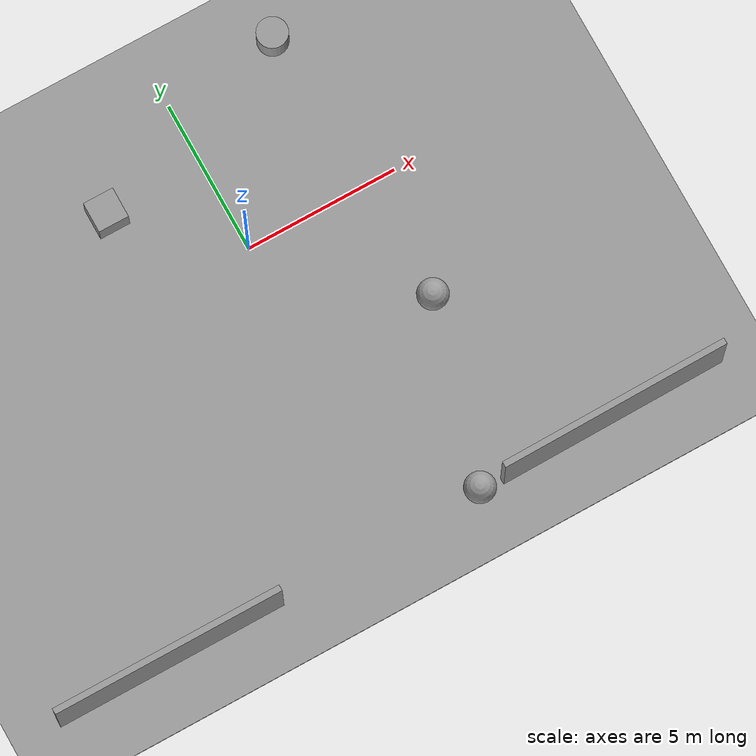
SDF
<sdf version="1.6">
 <world name="default">
  <light name="sun" type="directional">
   <pose>0 0 10 0 -0 0</pose>
   <diffuse>0.8 0.8 0.8 1</diffuse>
   <specular>0.2 0.2 0.2 1</specular>
   <attenuation>
    <range>1000</range>
    <constant>0.9</constant>
    <linear>0.01</linear>
    <quadratic>0.001</quadratic>
   </attenuation>
   <direction>0.5 0.1 -0.9</direction>
  </light>
  <scene><ambient>0.4 0.4 0.4 1</ambient><background>0.7 0.7 0.7 1</background><shadows>1</shadows></scene>
  <physics name="default_physics" default="0" type="ode">
   <max_step_size>0.01</max_step_size>
   <real_time_factor>1</real_time_factor>
   <real_time_update_rate>100</real_time_update_rate>
  </physics>
  <model name="ground_plane_0">
   <static>1</static>
   <link name="link">
    <collision name="collision">
     <geometry><plane><normal>0 0 1</normal><size>100 100</size></plane></geometry>
     <surface><friction><ode><mu>100</mu><mu2>50</mu2></ode></friction></surface>
    </collision>
    <visual name="visual">
     <cast_shadows>0</cast_shadows>
     <geometry><plane><normal>0 0 1</normal><size>100 100</size></plane></geometry>
     <material>
      <script><uri>file://media/materials/scripts/gazebo.material</uri><name>Gazebo/Grey</name></script>
     </material>
    </visual>
    <velocity_decay><linear>0</linear><angular>0</angular></velocity_decay>
   </link>
   <pose>0.497681 0 0 0 -0 0</pose>
  </model>
  <gravity>0 0 -9.8</gravity>
  <magnetic_field>6e-06 2.3e-05 -4.2e-05</magnetic_field>
  <atmosphere type="adiabatic"/>
  <spherical_coordinates>
   <surface_model>EARTH_WGS84</surface_model>
   <latitude_deg>0</latitude_deg>
   <longitude_deg>0</longitude_deg>
   <elevation>0</elevation>
   <heading_deg>0</heading_deg>
  </spherical_coordinates>
  <model name="ground_plane">
   <static>1</static>
   <link name="link">
    <collision name="collision">
     <geometry><plane><normal>0 0 1</normal><size>100 100</size></plane></geometry>
     <surface><friction><ode><mu>100</mu><mu2>50</mu2></ode></friction></surface>
    </collision>
    <visual name="visual">
     <cast_shadows>0</cast_shadows>
     <geometry><plane><normal>0 0 1</normal><size>100 100</size></plane></geometry>
     <material>
      <script><uri>file://media/materials/scripts/gazebo.material</uri><name>Gazebo/Grey</name></script>
     </material>
    </visual>
   </link>
   <pose>-6.28386 -0.29606 0 0 -0 0</pose>
  </model>
  <model name="ground_plane_1">
   <static>1</static>
   <link name="link">
    <collision name="collision">
     <geometry><plane><normal>0 0 1</normal><size>100 100</size></plane></geometry>
     <surface><friction><ode><mu>100</mu><mu2>50</mu2></ode></friction></surface>
    </collision>
    <visual name="visual">
     <cast_shadows>0</cast_shadows>
     <geometry><plane><normal>0 0 1</normal><size>100 100</size></plane></geometry>
     <material>
      <script><uri>file://media/materials/scripts/gazebo.material</uri><name>Gazebo/Grey</name></script>
     </material>
    </visual>
   </link>
   <pose>2.95609 -7.12951 0 0 -0 0</pose>
  </model>
  <model name="grey_wall_clone">
   <static>1</static>
   <link name="link">
    <pose>0 0 1.4 0 -0 0</pose>
    <collision name="collision"><geometry><box><size>7.5 0.2 2.8</size></box></geometry></collision>
    <visual name="visual">
     <cast_shadows>0</cast_shadows>
     <geometry><box><size>7.5 0.2 2.8</size></box></geometry>
     <material>
      <script>
       <uri>model://grey_wall/materials/scripts</uri>
       <uri>model://grey_wall/materials/textures</uri>
       <name>vrc/grey_wall</name>
      </script>
     </material>
    </visual>
   </link>
   <pose>-8.02205 -9.90651 0 0 -0 0.000194</pose>
  </model>
  <model name="grey_wall_clone_1">
   <static>1</static>
   <link name="link">
    <pose>0 0 1.4 0 -0 0</pose>
    <collision name="collision"><geometry><box><size>7.5 0.2 2.8</size></box></geometry></collision>
    <visual name="visual">
     <cast_shadows>0</cast_shadows>
     <geometry><box><size>7.5 0.2 2.8</size></box></geometry>
     <material>
      <script>
       <uri>model://grey_wall/materials/scripts</uri>
       <uri>model://grey_wall/materials/textures</uri>
       <name>vrc/grey_wall</name>
      </script>
     </material>
    </visual>
   </link>
   <pose>6.9369 -9.84164 0 0 -0 0.010438</pose>
  </model>
  <model name="unit_cylinder_0">
   <pose>3.73412 5.28423 0.5 0 -0 0</pose>
   <link name="link">
    <inertial>
     <mass>1</mass>
     <inertia><ixx>0.145833</ixx><ixy>0</ixy><ixz>0</ixz><iyy>0.145833</iyy><iyz>0</iyz><izz>0.125</izz></inertia>
    </inertial>
    <collision name="collision">
     <geometry><cylinder><radius>0.5</radius><length>1</length></cylinder></geometry>
    </collision>
    <visual name="visual">
     <geometry><cylinder><radius>0.5</radius><length>1</length></cylinder></geometry>
     <material>
      <script><name>Gazebo/Grey</name><uri>file://media/materials/scripts/gazebo.material</uri></script>
     </material>
    </visual>
   </link>
  </model>
  <model name="unit_sphere_0">
   <pose>4.1071 -3.98558 0.5 0 -0 0</pose>
   <link name="link">
    <inertial>
     <mass>1</mass>
     <inertia><ixx>0.1</ixx><ixy>0</ixy><ixz>0</ixz><iyy>0.1</iyy><iyz>0</iyz><izz>0.1</izz></inertia>
    </inertial>
    <collision name="collision"><geometry><sphere><radius>0.5</radius></sphere></geometry></collision>
    <visual name="visual">
     <geometry><sphere><radius>0.5</radius></sphere></geometry>
     <material>
      <script><name>Gazebo/Grey</name><uri>file://media/materials/scripts/gazebo.material</uri></script>
     </material>
    </visual>
   </link>
  </model>
  <model name="unit_box_0">
   <pose>-3.24038 2.89268 0.5 0 -0 0</pose>
   <link name="link">
    <inertial>
     <mass>1</mass>
     <inertia>
      <ixx>0.166667</ixx>
      <ixy>0</ixy>
      <ixz>0</ixz>
      <iyy>0.166667</iyy>
      <iyz>0</iyz>
      <izz>0.166667</izz>
     </inertia>
    </inertial>
    <collision name="collision"><geometry><box><size>1 1 1</size></box></geometry></collision>
    <visual name="visual">
     <geometry><box><size>1 1 1</size></box></geometry>
     <material>
      <script><name>Gazebo/Grey</name><uri>file://media/materials/scripts/gazebo.material</uri></script>
     </material>
    </visual>
   </link>
  </model>
  <model name="unit_sphere_1">
   <pose>2.48484 -9.78509 0.5 0 -0 0</pose>
   <link name="link">
    <inertial>
     <mass>1</mass>
     <inertia><ixx>0.1</ixx><ixy>0</ixy><ixz>0</ixz><iyy>0.1</iyy><iyz>0</iyz><izz>0.1</izz></inertia>
    </inertial>
    <collision name="collision"><geometry><sphere><radius>0.5</radius></sphere></geometry></collision>
    <visual name="visual">
     <geometry><sphere><radius>0.5</radius></sphere></geometry>
     <material>
      <script><name>Gazebo/Grey</name><uri>file://media/materials/scripts/gazebo.material</uri></script>
     </material>
    </visual>
   </link>
  </model>
 </world>
</sdf>
